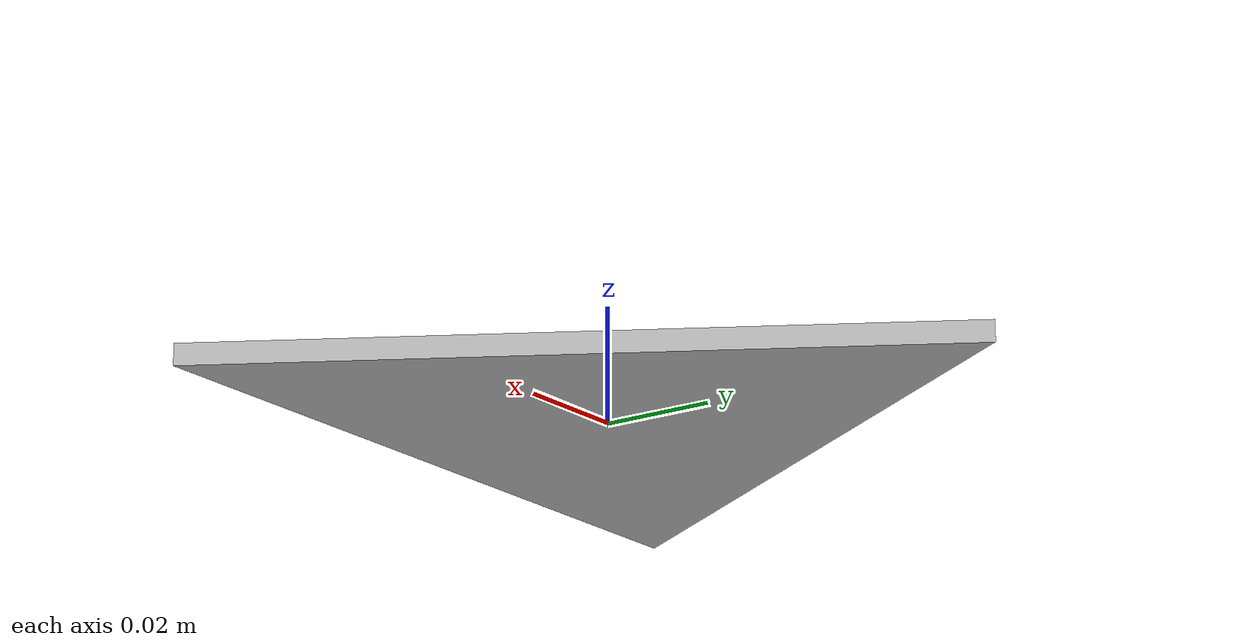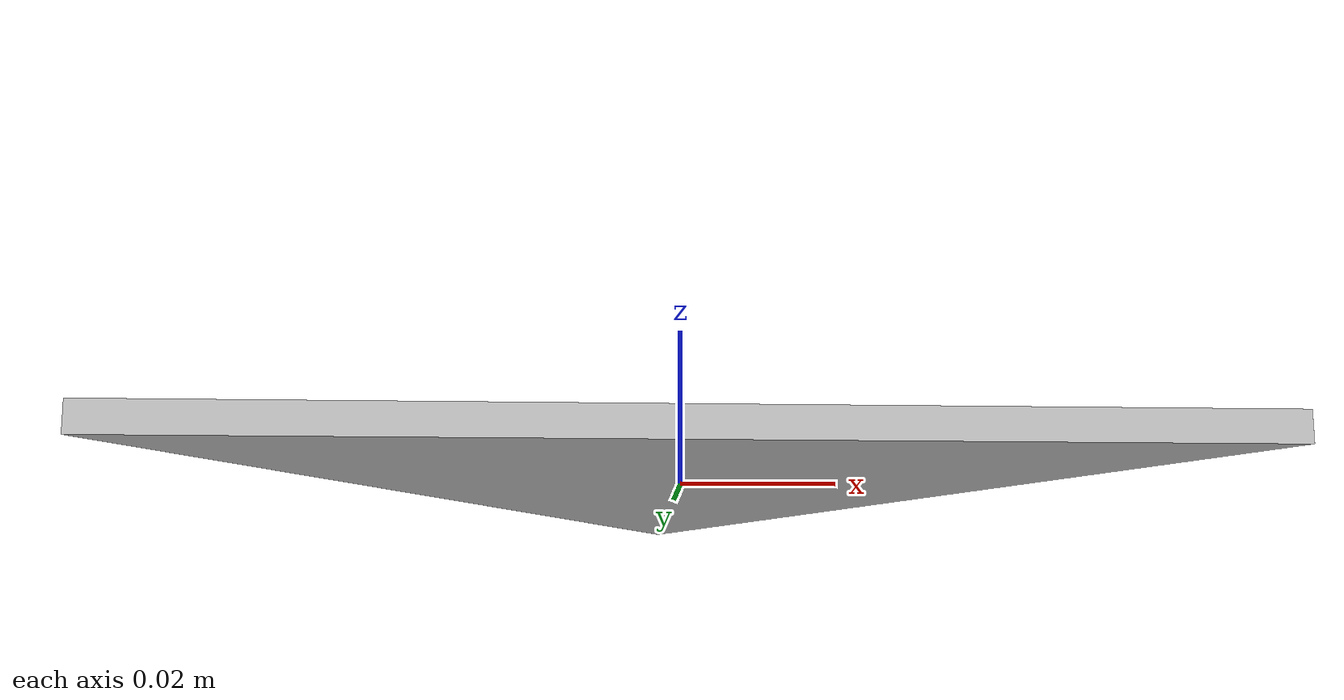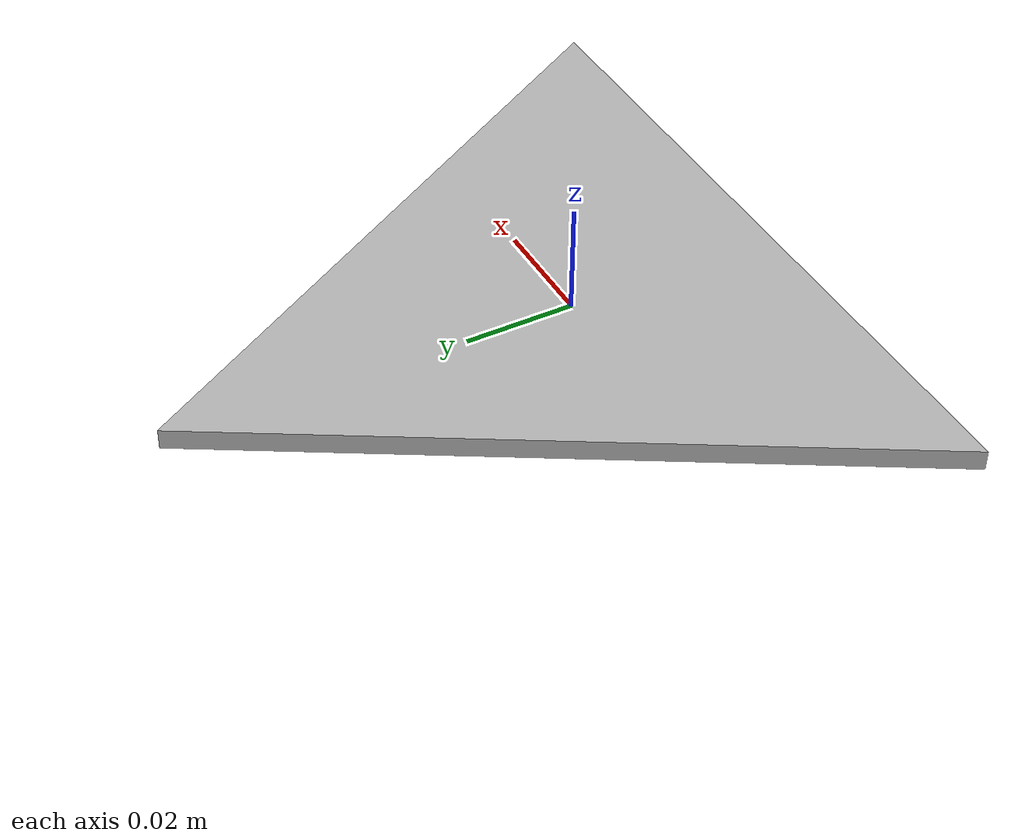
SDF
<?xml version="1.0"?>
<sdf version="1.5">
    <model name="figure_triangle_green">
        <static>true</static>
        <link name="link">
            <collision name="collision1">
                <pose>0 0 0 0 0 0</pose>
                <geometry>
                    <mesh>
                        <uri>model://figure_triangle_green/meshes/figure_triangle_green.dae</uri>
                        <scale>0.15 0.15 0.15</scale>
                    </mesh>
                </geometry>
            </collision>
            <visual name="visual1">
                <pose>0 0 0 0 0 0</pose>
                <geometry>
                    <mesh>
                        <uri>model://figure_triangle_green/meshes/figure_triangle_green.dae</uri>
                        <scale>0.15 0.15 0.15</scale>
                    </mesh>
                </geometry>
            </visual>
        </link>
    </model>
</sdf>
